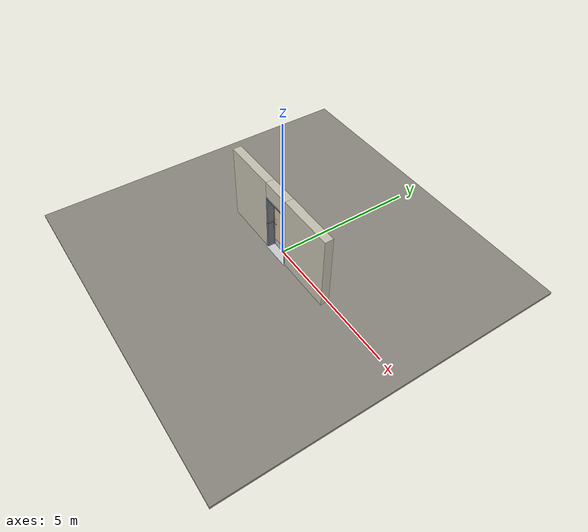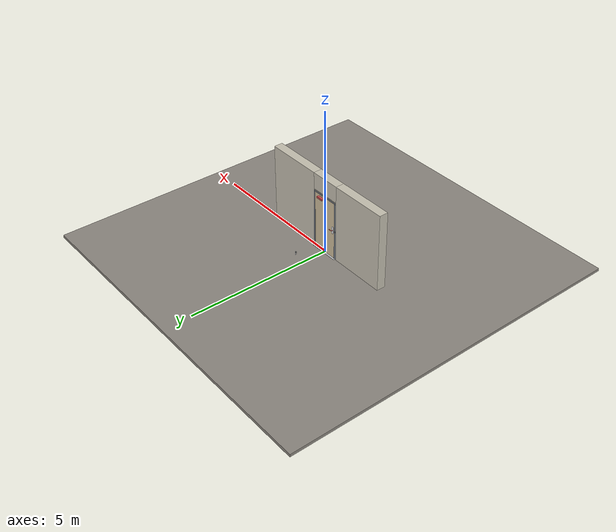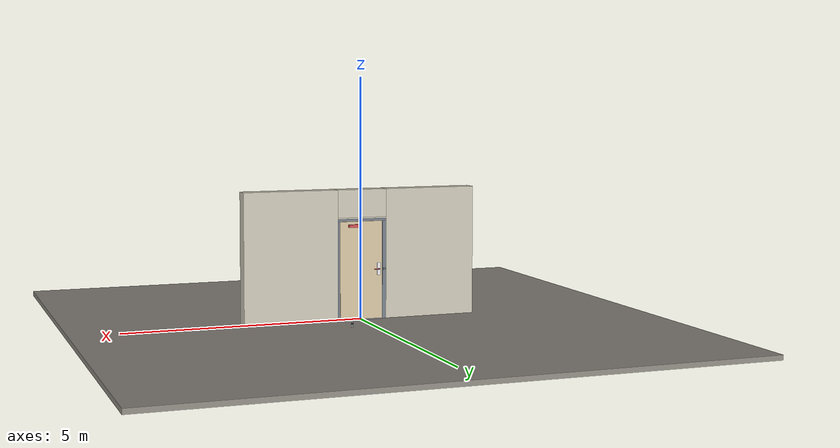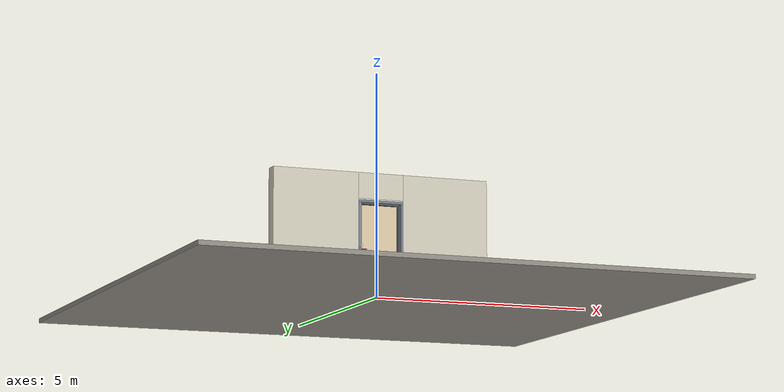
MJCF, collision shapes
<?xml version="1.0" ?>
<mujoco model="db0061_swing_single_simple">
  <compiler angle="radian" meshdir="../../hardware" texturedir="../../textures" autolimits="true" inertiafromgeom="false"/>
  <option timestep="0.002" integrator="implicitfast" cone="elliptic" impratio="10" noslip_iterations="3">
    <flag multiccd="enable"/>
  </option>
  <size memory="16M"/>
  <default>
    <geom condim="4" solref="0.005 1" solimp="0.95 0.99 0.001"/>
    <joint solreflimit="0.005 1" solimplimit="0.95 0.99 0.001"/>
    <tendon solreflimit="0.005 1"/>
    <equality solref="0.002 1"/>
  </default>
  <visual>
    <headlight ambient="0.4 0.4 0.4" diffuse="0.7 0.7 0.7" specular="0.2 0.2 0.2"/>
    <quality shadowsize="4096"/>
    <map znear="0.01" zfar="60"/>
  </visual>
  <asset>
    <mesh name="card_reader_38c0bdb077" file="card_reader_38c0bdb077.obj"/>
    <mesh name="closer_body_b226fdb10b" file="closer_body_b226fdb10b.obj"/>
    <mesh name="hinge_e22b26c0c1" file="hinge_e22b26c0c1.obj"/>
    <mesh name="hinge_jamb_e1d088f8dc" file="hinge_jamb_e1d088f8dc.obj"/>
    <mesh name="lever_56c65af20a" file="lever_56c65af20a.obj"/>
    <material name="mat_floor" rgba="0.55 0.53 0.5 1" specular="0.2" shininess="0.15" reflectance="0"/>
    <material name="mat_wall" rgba="0.78 0.76 0.7 1" specular="0.2" shininess="0.1" reflectance="0"/>
    <material name="mat_leaf" rgba="0.82 0.75 0.62 1" specular="0.2" shininess="0.59" reflectance="0"/>
    <material name="mat_hinge" rgba="0.65 0.66 0.68 1" specular="0.74" shininess="0.5" reflectance="0.36"/>
    <material name="mat_op_chrome" rgba="0.9 0.9 0.92 1" specular="0.8" shininess="0.9" reflectance="0.4"/>
    <material name="mat_trim" rgba="0.85 0.66 0.3 1" specular="0.8" shininess="0.75" reflectance="0.4"/>
    <material name="mat_reader" rgba="0.05 0.05 0.05 1" specular="0.38" shininess="0.3" reflectance="0.12"/>
    <material name="mat_bolt" rgba="0.75 0.76 0.77 1" specular="0.8" shininess="0.65" reflectance="0.4"/>
    <material name="mat_frame" rgba="0.45 0.48 0.52 1" specular="0.32" shininess="0.6" reflectance="0.08"/>
    <material name="mat_seal" rgba="0.1 0.1 0.1 1" specular="0.2" shininess="0.1" reflectance="0"/>
    <material name="mat_threshold" rgba="0.8 0.81 0.83 1" specular="0.8" shininess="0.6" reflectance="0.4"/>
    <material name="mat_closer" rgba="0.22 0.17 0.13 1" specular="0.8" shininess="0.6" reflectance="0.4"/>
    <material name="mat_kick" rgba="0.75 0.76 0.77 1" specular="0.8" shininess="0.65" reflectance="0.4"/>
    <material name="mat_peephole" rgba="0.85 0.66 0.3 1" specular="0.8" shininess="0.75" reflectance="0.4"/>
    <material name="mat_bumper_stop" rgba="0.08 0.08 0.08 1" specular="0.2" shininess="0.1" reflectance="0"/>
    <material name="mat_stop_base" rgba="0.9 0.9 0.92 1" specular="0.8" shininess="0.9" reflectance="0.4"/>
    <texture name="skybox" type="skybox" builtin="gradient" rgb1="0.6 0.7 0.85" rgb2="0.9 0.92 0.95" width="256" height="256"/>
  </asset>
  <worldbody>
    <light name="sun" pos="1.5 -2.5 4" dir="-0.3 0.5 -0.8" directional="true" diffuse="0.8 0.8 0.8" specular="0.3 0.3 0.3" castshadow="true"/>
    <light name="fill" pos="-1.5 2.5 3" dir="0.3 -0.5 -0.7" directional="true" diffuse="0.35 0.35 0.4" castshadow="false"/>
    <camera name="robot_view" pos="0 -2.663187 1.734312" xyaxes="1 0 0 0 0.26963 0.962964" fovy="52"/>
    <camera name="far_view" pos="0 2.421187 1.734312" xyaxes="-1 0 0 0 -0.26963 0.962964" fovy="52"/>
    <camera name="iso" pos="-1.932062 -2.256438 2.141063" xyaxes="0.741536 -0.670913 0 0.242917 0.268487 0.932151" fovy="46"/>
    <camera name="detail_handle" pos="-0.1105 -0.877 1.32" xyaxes="0.97561 0.219512 0 -0.070934 0.315262 0.94635" fovy="38"/>
    <geom name="floor" type="box" size="6 6 0.05" pos="0 0 -0.05" material="mat_floor" group="0" contype="1" conaffinity="1" friction="0.8 0.005 0.0001" density="2400"/>
    <geom name="wall_left" type="box" size="0.97975 0.15 1.35" pos="-1.52025 -0.121 1.35" material="mat_wall" group="0" contype="1" conaffinity="1" friction="0.6 0.005 0.0001" density="800"/>
    <geom name="wall_right" type="box" size="0.99475 0.15 1.35" pos="1.50525 -0.121 1.35" material="mat_wall" group="0" contype="1" conaffinity="1" friction="0.6 0.005 0.0001" density="800"/>
    <geom name="wall_header" type="box" size="0.5255 0.15 0.2875" pos="-0.015 -0.121 2.4125" material="mat_wall" group="0" contype="1" conaffinity="1" friction="0.6 0.005 0.0001" density="800"/>
    <geom name="hinge_0_jamb" type="mesh" mesh="hinge_jamb_e1d088f8dc" pos="0.4575 0.029 0.259" quat="0 0 0 1" material="mat_hinge" group="1" contype="0" conaffinity="0" density="7850"/>
    <geom name="hinge_1_jamb" type="mesh" mesh="hinge_jamb_e1d088f8dc" pos="0.4575 0.029 1.025" quat="0 0 0 1" material="mat_hinge" group="1" contype="0" conaffinity="0" density="7850"/>
    <geom name="hinge_2_jamb" type="mesh" mesh="hinge_jamb_e1d088f8dc" pos="0.4575 0.029 1.861" quat="0 0 0 1" material="mat_hinge" group="1" contype="0" conaffinity="0" density="7850"/>
    <geom name="jamb_hinge" type="box" size="0.025 0.15 1.0225" pos="0.4855 -0.121 1.0225" material="mat_frame" group="0" contype="1" conaffinity="1" friction="0.6 0.005 0.0001" density="300"/>
    <geom name="strike_1040_wall_n" type="box" size="0.04 0.13075 0.018" pos="-0.5005 -0.14025 1.04" material="mat_frame" group="0" contype="1" conaffinity="1" friction="0.6 0.005 0.0001" density="300"/>
    <geom name="strike_1040_wall_p" type="box" size="0.04 0.008 0.018" pos="-0.5005 0.0175 1.04" material="mat_frame" group="0" contype="1" conaffinity="1" friction="0.6 0.005 0.0001" density="300"/>
    <geom name="strike_1040_ramp" type="box" size="0.04 0.018028 0.018" pos="-0.503782 0.018312 1.04" quat="0.957092 0 0 0.289784" material="mat_frame" group="0" contype="1" conaffinity="1" friction="0.12 0.005 0.0001" density="300"/>
    <geom name="strike_1040_back" type="box" size="0.0285 0.0095 0.018" pos="-0.512 0 1.04" material="mat_frame" group="0" contype="1" conaffinity="1" friction="0.6 0.005 0.0001" density="300"/>
    <geom name="jamb_strike_0" type="box" size="0.04 0.15 0.511" pos="-0.5005 -0.121 0.511" material="mat_frame" group="0" contype="1" conaffinity="1" friction="0.6 0.005 0.0001" density="300"/>
    <geom name="jamb_strike_1" type="box" size="0.04 0.15 0.4935" pos="-0.5005 -0.121 1.5515" material="mat_frame" group="0" contype="1" conaffinity="1" friction="0.6 0.005 0.0001" density="300"/>
    <geom name="jamb_head" type="box" size="0.5255 0.15 0.025" pos="-0.015 -0.121 2.07" material="mat_frame" group="0" contype="1" conaffinity="1" friction="0.6 0.005 0.0001" density="300"/>
    <geom name="head_stud" type="box" size="0.5255 0.15 0.015" pos="-0.015 -0.121 2.11" material="mat_wall" group="0" contype="1" conaffinity="1" friction="0.6 0.005 0.0001" density="500"/>
    <geom name="stop_hinge" type="box" size="0.0055 0.016 1.0225" pos="0.455 -0.0385 1.0225" material="mat_frame" group="0" contype="1" conaffinity="1" friction="0.6 0.005 0.0001" density="300"/>
    <geom name="stop_strike" type="box" size="0.0055 0.016 1.0225" pos="-0.455 -0.0385 1.0225" material="mat_frame" group="0" contype="1" conaffinity="1" friction="0.6 0.005 0.0001" density="300"/>
    <geom name="stop_head" type="box" size="0.4605 0.016 0.0055" pos="0 -0.0385 2.0395" material="mat_frame" group="0" contype="1" conaffinity="1" friction="0.6 0.005 0.0001" density="300"/>
    <geom name="seal_hinge" type="box" size="0.004 0.0025 1.0225" pos="0.4575 -0.0245 1.0225" material="mat_seal" group="1" contype="0" conaffinity="0" density="1100"/>
    <geom name="seal_strike" type="box" size="0.004 0.0025 1.0225" pos="-0.4575 -0.0245 1.0225" material="mat_seal" group="1" contype="0" conaffinity="0" density="1100"/>
    <geom name="seal_head" type="box" size="0.4405 0.0025 0.008" pos="0 -0.0245 2.033" material="mat_seal" group="1" contype="0" conaffinity="0" density="1100"/>
    <geom name="threshold" type="box" size="0.5105 0.2 0.004" pos="0 -0.121 0.004" material="mat_threshold" group="0" contype="1" conaffinity="1" friction="0.6 0.005 0.0001" density="2700"/>
    <geom name="door_stop_base" type="cylinder" size="0.022 0.003" pos="0.4735 0.8059 0.003" material="mat_stop_base" group="0" contype="1" conaffinity="1" friction="0.6 0.005 0.0001" density="7850"/>
    <geom name="door_stop_post" type="cylinder" size="0.012 0.0245" pos="0.4735 0.8059 0.0305" material="mat_stop_base" group="0" contype="1" conaffinity="1" friction="0.6 0.005 0.0001" density="7850"/>
    <geom name="door_stop_bumper" type="cylinder" size="0.022 0.02" pos="0.4735 0.8059 0.075" material="mat_bumper_stop" group="0" contype="1" conaffinity="1" friction="0.6 0.005 0.0001" density="1100"/>
    <site name="approach_point" pos="0 -1.5 0" quat="1 0 0 0" size="0.05" rgba="0.2 0.9 0.2 0.5" group="4"/>
    <site name="goal_point" pos="0 1.5 0" quat="1 0 0 0" size="0.05" rgba="0.2 0.9 0.2 0.5" group="4"/>
    <site name="door_plane_center" pos="0 0 1.0225" quat="1 0 0 0" size="0.02" rgba="0.2 0.9 0.2 0.5" group="4"/>
    <body name="leaf" pos="0.4605 0 0">
      <inertial pos="-0.44265 0.007032 1.102382" mass="62.154049" quat="0.50951 -0.512789 -0.495524 -0.481563" diaginertia="4.164159055 25.724771542 29.825288193"/>
      <joint name="leaf_hinge" type="hinge" axis="0 0 -1" pos="-0.003 0.029 0" limited="true" range="0 1.570796" solreflimit="0.02 1" damping="10.25611" frictionloss="2.490077" stiffness="12.859719" springref="-2.527271" armature="0.02"/>
      <geom name="leaf_slab" type="box" size="0.457 0.022 1.016" pos="-0.46 0 1.025" material="mat_leaf" group="0" contype="1" conaffinity="1" friction="0.4 0.005 0.0001" density="1"/>
      <geom name="hinge_0" type="mesh" mesh="hinge_e22b26c0c1" pos="-0.003 0.029 0.259" quat="0 0 0 1" material="mat_hinge" group="1" contype="0" conaffinity="0" density="7850"/>
      <geom name="hinge_1" type="mesh" mesh="hinge_e22b26c0c1" pos="-0.003 0.029 1.025" quat="0 0 0 1" material="mat_hinge" group="1" contype="0" conaffinity="0" density="7850"/>
      <geom name="hinge_2" type="mesh" mesh="hinge_e22b26c0c1" pos="-0.003 0.029 1.861" quat="0 0 0 1" material="mat_hinge" group="1" contype="0" conaffinity="0" density="7850"/>
      <geom name="leaf_handle_escutcheon_n" type="box" size="0.0375 0.0015 0.13" pos="-0.847 -0.0235 1.04" material="mat_op_chrome" group="1" contype="0" conaffinity="0" density="3000"/>
      <geom name="leaf_handle_escutcheon_p" type="box" size="0.0375 0.0015 0.13" pos="-0.847 0.0235 1.04" material="mat_op_chrome" group="1" contype="0" conaffinity="0" density="3000"/>
      <geom name="leaf_handle_reader" type="mesh" mesh="card_reader_38c0bdb077" pos="-0.847 0.022 1.2" quat="0 0 0.707107 0.707107" material="mat_reader" group="1" contype="0" conaffinity="0" density="2000"/>
      <geom name="leaf_latch_bolt_faceplate" type="box" size="0.0006 0.014 0.028" pos="-0.9164 0 1.04" material="mat_bolt" group="1" contype="0" conaffinity="0" density="8500"/>
      <geom name="closer_body" type="mesh" mesh="closer_body_b226fdb10b" pos="-0.3 0.022 1.952" quat="0 0 0.707107 0.707107" material="mat_closer" group="1" contype="0" conaffinity="0" density="2000"/>
      <geom name="closer_body_col" type="box" size="0.12 0.04 0.03" pos="-0.3 0.062 1.952" material="mat_closer" group="3" contype="1" conaffinity="1" rgba="0.8 0.3 0.3 0.25" friction="0.6 0.005 0.0001" density="2000"/>
      <geom name="kick_plate_n" type="box" size="0.427 0.0008 0.125" pos="-0.46 -0.0228 0.144" material="mat_kick" group="2" contype="0" conaffinity="0" density="7900"/>
      <site name="leaf_edge_mid" pos="-0.917 0 1.016" quat="1 0 0 0" size="0.02" rgba="0.2 0.9 0.2 0.5" group="4"/>
      <body name="leaf_handle" pos="-0.847 0 1.04">
        <inertial pos="0.038009 0 0" mass="0.678697" quat="0.707107 0 0 -0.707107" diaginertia="0.001178914 0.003248695 0.004390737"/>
        <joint name="leaf_handle_hinge" type="hinge" axis="0 1 0" limited="true" range="0 0.87" damping="0.231314" frictionloss="0.06" stiffness="1.1" springref="-0.454545" armature="0.01"/>
        <geom name="leaf_handle_lever_n" type="mesh" mesh="lever_56c65af20a" pos="0 -0.022 0" quat="0 0 -0.707107 0.707107" material="mat_op_chrome" group="1" contype="0" conaffinity="0" density="3000"/>
        <geom name="leaf_handle_lever_col_n" type="capsule" size="0.0095 0.0505" pos="0.06 -0.077 0" quat="0.707107 0 0.707107 0" material="mat_op_chrome" group="3" contype="1" conaffinity="1" rgba="0.8 0.3 0.3 0.25" friction="0.7 0.01 0.0001" density="3000"/>
        <geom name="leaf_handle_hub_col_n" type="cylinder" size="0.012 0.022" pos="0 -0.052 0" quat="0.707107 -0.707107 0 0" material="mat_op_chrome" group="3" contype="1" conaffinity="1" rgba="0.8 0.3 0.3 0.25" friction="0.6 0.005 0.0001" density="3000"/>
        <geom name="leaf_handle_lever_p" type="mesh" mesh="lever_56c65af20a" pos="0 0.022 0" quat="0 0 0.707107 0.707107" material="mat_op_chrome" group="1" contype="0" conaffinity="0" density="3000"/>
        <geom name="leaf_handle_lever_col_p" type="capsule" size="0.0095 0.0505" pos="0.06 0.077 0" quat="0.707107 0 0.707107 0" material="mat_op_chrome" group="3" contype="1" conaffinity="1" rgba="0.8 0.3 0.3 0.25" friction="0.7 0.01 0.0001" density="3000"/>
        <geom name="leaf_handle_hub_col_p" type="cylinder" size="0.012 0.022" pos="0 0.052 0" quat="0.707107 -0.707107 0 0" material="mat_op_chrome" group="3" contype="1" conaffinity="1" rgba="0.8 0.3 0.3 0.25" friction="0.6 0.005 0.0001" density="3000"/>
        <site name="leaf_handle_grip_n" pos="0.096 -0.077 0" quat="1 0 0 0" size="0.012" rgba="0.2 0.9 0.2 0.5" group="4"/>
        <site name="leaf_handle_grip_p" pos="0.096 0.077 0" quat="1 0 0 0" size="0.012" rgba="0.2 0.9 0.2 0.5" group="4"/>
      </body>
      <body name="leaf_latch_bolt" pos="-0.917 0 1.04">
        <inertial pos="0.0055 0 0" mass="0.074627" quat="0.92388 0.382683 0 0" diaginertia="0.000002271 0.000013255 0.000013255"/>
        <joint name="leaf_latch_bolt_slide" type="slide" axis="1 0 0" limited="true" range="0 0.019" damping="2" frictionloss="0.3" stiffness="550" springref="-0.01" armature="0.1"/>
        <geom name="leaf_latch_bolt_capsule" type="capsule" size="0.008 0.0165" pos="0.0055 0 0" quat="0.707107 0 -0.707107 0" material="mat_bolt" group="0" contype="1" conaffinity="1" friction="0.2 0.005 0.0001" density="8500"/>
      </body>
    </body>
  </worldbody>
  <tendon>
    <fixed name="leaf_latch_bolt_coupling" limited="true" range="0 10">
      <joint joint="leaf_latch_bolt_slide" coef="1"/>
      <joint joint="leaf_handle_hinge" coef="-0.023457"/>
    </fixed>
  </tendon>
  <sensor>
    <jointpos name="leaf_hinge_pos" joint="leaf_hinge"/>
    <jointvel name="leaf_hinge_vel" joint="leaf_hinge"/>
    <jointpos name="leaf_handle_hinge_pos" joint="leaf_handle_hinge"/>
    <jointvel name="leaf_handle_hinge_vel" joint="leaf_handle_hinge"/>
    <jointpos name="leaf_latch_bolt_slide_pos" joint="leaf_latch_bolt_slide"/>
    <jointvel name="leaf_latch_bolt_slide_vel" joint="leaf_latch_bolt_slide"/>
  </sensor>
</mujoco>
